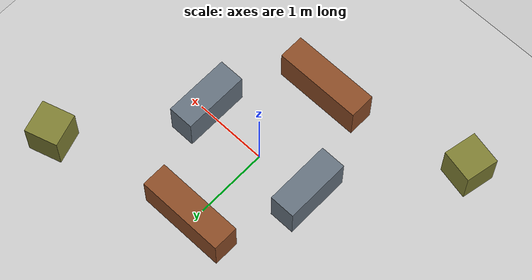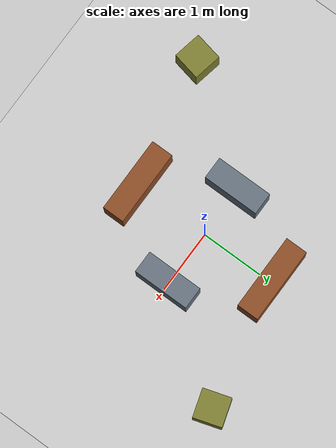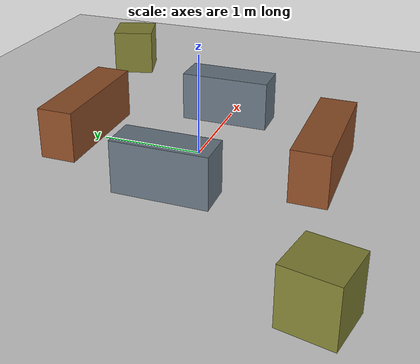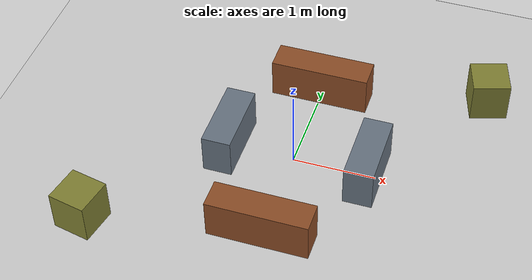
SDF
<sdf version="1.8">
 <world name="default">
  <physics type="ode">
   <real_time_update_rate>1000.0</real_time_update_rate>
   <max_step_size>0.001</max_step_size>
   <real_time_factor>1</real_time_factor>
   <ode>
    <solver>
     <type>quick</type>
     <iters>150</iters>
     <precon_iters>0</precon_iters>
     <sor>1.400000</sor>
     <use_dynamic_moi_rescaling>1</use_dynamic_moi_rescaling>
    </solver>
    <constraints>
     <cfm>0.00001</cfm>
     <erp>0.2</erp>
     <contact_max_correcting_vel>2000.000000</contact_max_correcting_vel>
     <contact_surface_layer>0.01000</contact_surface_layer>
    </constraints>
   </ode>
  </physics>
  <plugin filename="gz-sim-physics-system" name="gz::sim::systems::Physics"/>
  <plugin filename="gz-sim-user-commands-system" name="gz::sim::systems::UserCommands"/>
  <plugin filename="gz-sim-scene-broadcaster-system" name="gz::sim::systems::SceneBroadcaster"/>
  <plugin filename="gz-sim-sensors-system" name="gz::sim::systems::Sensors">
   <render_engine>ogre2</render_engine>
  </plugin>
  <plugin filename="gz-sim-imu-system" name="gz::sim::systems::Imu"/>
  <include><uri>https://fuel.gazebosim.org/1.0/OpenRobotics/models/Ground Plane</uri></include>
  <include><uri>https://fuel.gazebosim.org/1.0/OpenRobotics/models/Sun</uri></include>
  <model name="obstacle_1">
   <static>true</static>
   <pose>0.0 1.2 0.25 0 0 0</pose>
   <link name="link">
    <collision name="c"><geometry><box><size>1.2 0.35 0.5</size></box></geometry></collision>
    <visual name="v">
     <geometry><box><size>1.2 0.35 0.5</size></box></geometry>
     <material><ambient>0.55 0.3 0.15 1</ambient><diffuse>0.55 0.3 0.15 1</diffuse></material>
    </visual>
   </link>
  </model>
  <model name="obstacle_2">
   <static>true</static>
   <pose>0.0 -1.2 0.25 0 0 0</pose>
   <link name="link">
    <collision name="c"><geometry><box><size>1.2 0.35 0.5</size></box></geometry></collision>
    <visual name="v">
     <geometry><box><size>1.2 0.35 0.5</size></box></geometry>
     <material><ambient>0.55 0.3 0.15 1</ambient><diffuse>0.55 0.3 0.15 1</diffuse></material>
    </visual>
   </link>
  </model>
  <model name="obstacle_3">
   <static>true</static>
   <pose>-0.8 0.0 0.25 0 0 0</pose>
   <link name="link">
    <collision name="c"><geometry><box><size>0.35 0.9 0.5</size></box></geometry></collision>
    <visual name="v">
     <geometry><box><size>0.35 0.9 0.5</size></box></geometry>
     <material><ambient>0.4 0.45 0.5 1</ambient><diffuse>0.4 0.45 0.5 1</diffuse></material>
    </visual>
   </link>
  </model>
  <model name="obstacle_4">
   <static>true</static>
   <pose>0.9 0.0 0.25 0 0 0</pose>
   <link name="link">
    <collision name="c"><geometry><box><size>0.35 0.9 0.5</size></box></geometry></collision>
    <visual name="v">
     <geometry><box><size>0.35 0.9 0.5</size></box></geometry>
     <material><ambient>0.4 0.45 0.5 1</ambient><diffuse>0.4 0.45 0.5 1</diffuse></material>
    </visual>
   </link>
  </model>
  <model name="obstacle_5">
   <static>true</static>
   <pose>2.0 1.6 0.25 0 0 0.3</pose>
   <link name="link">
    <collision name="c"><geometry><box><size>0.45 0.45 0.5</size></box></geometry></collision>
    <visual name="v">
     <geometry><box><size>0.45 0.45 0.5</size></box></geometry>
     <material><ambient>0.5 0.5 0.2 1</ambient><diffuse>0.5 0.5 0.2 1</diffuse></material>
    </visual>
   </link>
  </model>
  <model name="obstacle_6">
   <static>true</static>
   <pose>-2.0 -1.6 0.25 0 0 -0.2</pose>
   <link name="link">
    <collision name="c"><geometry><box><size>0.45 0.45 0.5</size></box></geometry></collision>
    <visual name="v">
     <geometry><box><size>0.45 0.45 0.5</size></box></geometry>
     <material><ambient>0.5 0.5 0.2 1</ambient><diffuse>0.5 0.5 0.2 1</diffuse></material>
    </visual>
   </link>
  </model>
 </world>
</sdf>
